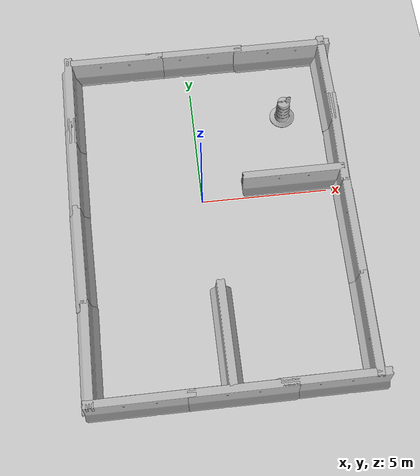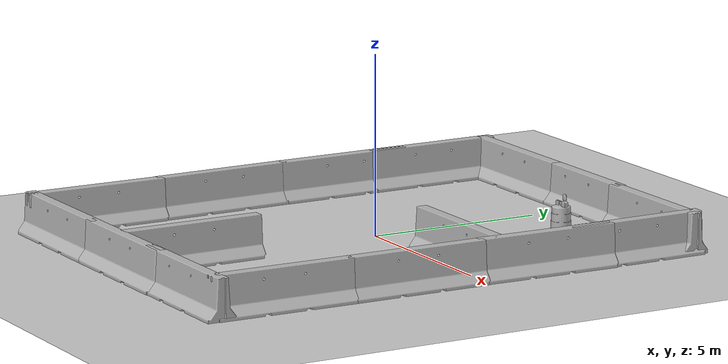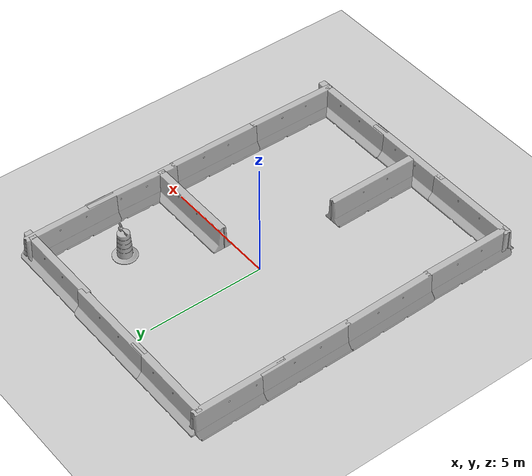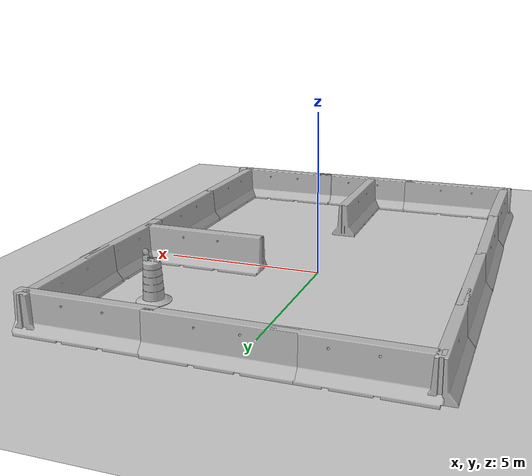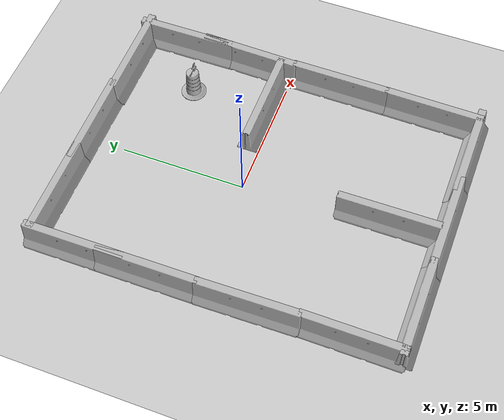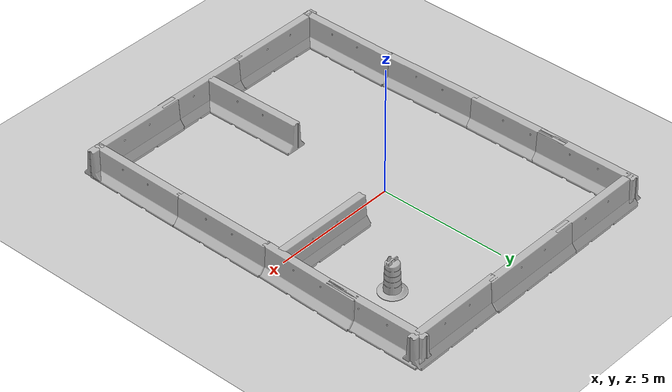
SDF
<sdf version="1.6">
 <world name="default">
  <light name="sun" type="directional">
   <pose>0 0 10 0 -0 0</pose>
   <diffuse>0.8 0.8 0.8 1</diffuse>
   <specular>0.1 0.1 0.1 1</specular>
   <attenuation>
    <range>1000</range>
    <constant>0.9</constant>
    <linear>0.01</linear>
    <quadratic>0.001</quadratic>
   </attenuation>
   <direction>-0.5 0.5 -1</direction>
  </light>
  <model name="ground_plane">
   <static>1</static>
   <link name="link">
    <collision name="collision">
     <geometry><plane><normal>0 0 1</normal><size>100 100</size></plane></geometry>
     <surface><friction><ode><mu>100</mu><mu2>50</mu2></ode></friction></surface>
    </collision>
    <visual name="visual">
     <cast_shadows>0</cast_shadows>
     <geometry><plane><normal>0 0 1</normal><size>100 100</size></plane></geometry>
     <material>
      <script><uri>file://media/materials/scripts/gazebo.material</uri><name>Gazebo/Grey</name></script>
     </material>
    </visual>
   </link>
  </model>
  <gravity>0 0 -9.8</gravity>
  <magnetic_field>6e-06 2.3e-05 -4.2e-05</magnetic_field>
  <atmosphere type="adiabatic"/>
  <physics name="default_physics" default="0" type="ode">
   <max_step_size>0.001</max_step_size>
   <real_time_factor>1</real_time_factor>
   <real_time_update_rate>1000</real_time_update_rate>
  </physics>
  <scene><ambient>0.4 0.4 0.4 1</ambient><background>0.7 0.7 0.7 1</background><shadows>1</shadows></scene>
  <spherical_coordinates>
   <surface_model>EARTH_WGS84</surface_model>
   <latitude_deg>0</latitude_deg>
   <longitude_deg>0</longitude_deg>
   <elevation>0</elevation>
   <heading_deg>0</heading_deg>
  </spherical_coordinates>
  <model name="jersey_barrier">
   <static>1</static>
   <link name="link">
    <visual name="visual">
     <geometry>
      <mesh><uri>model://jersey_barrier/meshes/jersey_barrier.dae</uri><scale>1 1 1</scale></mesh>
     </geometry>
    </visual>
    <collision name="upright">
     <pose>0 0 0.5715 0 -0 0</pose>
     <geometry><box><size>4.06542 0.3063 1.143</size></box></geometry>
    </collision>
    <collision name="base">
     <pose>0 0 0.032258 0 -0 0</pose>
     <geometry><box><size>4.06542 0.8107 0.064516</size></box></geometry>
    </collision>
    <collision name="base2">
     <pose>0 0 0.1 0 -0 0</pose>
     <geometry><box><size>4.06542 0.65 0.1</size></box></geometry>
    </collision>
    <collision name="base3">
     <pose>0 0 0.2 0 -0 0</pose>
     <geometry><box><size>4.06542 0.5 0.1</size></box></geometry>
    </collision>
    <collision name="left-angle">
     <pose>0 -0.224 0.2401 0.9 -0 0</pose>
     <geometry><box><size>4.06542 0.5 0.064516</size></box></geometry>
    </collision>
    <collision name="right-angle">
     <pose>0 0.224 0.2401 -0.9 0 0</pose>
     <geometry><box><size>4.06542 0.5 0.064516</size></box></geometry>
    </collision>
   </link>
   <pose>0.649461 -7.8387 0 0 -0 0</pose>
  </model>
  <model name="jersey_barrier_0">
   <static>1</static>
   <link name="link">
    <visual name="visual">
     <geometry>
      <mesh><uri>model://jersey_barrier/meshes/jersey_barrier.dae</uri><scale>1 1 1</scale></mesh>
     </geometry>
    </visual>
    <collision name="upright">
     <pose>0 0 0.5715 0 -0 0</pose>
     <geometry><box><size>4.06542 0.3063 1.143</size></box></geometry>
    </collision>
    <collision name="base">
     <pose>0 0 0.032258 0 -0 0</pose>
     <geometry><box><size>4.06542 0.8107 0.064516</size></box></geometry>
    </collision>
    <collision name="base2">
     <pose>0 0 0.1 0 -0 0</pose>
     <geometry><box><size>4.06542 0.65 0.1</size></box></geometry>
    </collision>
    <collision name="base3">
     <pose>0 0 0.2 0 -0 0</pose>
     <geometry><box><size>4.06542 0.5 0.1</size></box></geometry>
    </collision>
    <collision name="left-angle">
     <pose>0 -0.224 0.2401 0.9 -0 0</pose>
     <geometry><box><size>4.06542 0.5 0.064516</size></box></geometry>
    </collision>
    <collision name="right-angle">
     <pose>0 0.224 0.2401 -0.9 0 0</pose>
     <geometry><box><size>4.06542 0.5 0.064516</size></box></geometry>
    </collision>
   </link>
   <pose>-3.05336 -7.83742 0 0 -0 0</pose>
  </model>
  <model name="jersey_barrier_1">
   <static>1</static>
   <link name="link">
    <visual name="visual">
     <geometry>
      <mesh><uri>model://jersey_barrier/meshes/jersey_barrier.dae</uri><scale>1 1 1</scale></mesh>
     </geometry>
    </visual>
    <collision name="upright">
     <pose>0 0 0.5715 0 -0 0</pose>
     <geometry><box><size>4.06542 0.3063 1.143</size></box></geometry>
    </collision>
    <collision name="base">
     <pose>0 0 0.032258 0 -0 0</pose>
     <geometry><box><size>4.06542 0.8107 0.064516</size></box></geometry>
    </collision>
    <collision name="base2">
     <pose>0 0 0.1 0 -0 0</pose>
     <geometry><box><size>4.06542 0.65 0.1</size></box></geometry>
    </collision>
    <collision name="base3">
     <pose>0 0 0.2 0 -0 0</pose>
     <geometry><box><size>4.06542 0.5 0.1</size></box></geometry>
    </collision>
    <collision name="left-angle">
     <pose>0 -0.224 0.2401 0.9 -0 0</pose>
     <geometry><box><size>4.06542 0.5 0.064516</size></box></geometry>
    </collision>
    <collision name="right-angle">
     <pose>0 0.224 0.2401 -0.9 0 0</pose>
     <geometry><box><size>4.06542 0.5 0.064516</size></box></geometry>
    </collision>
   </link>
   <pose>3.99736 -7.8131 0 0 -0 0</pose>
  </model>
  <model name="jersey_barrier_2">
   <static>1</static>
   <link name="link">
    <visual name="visual">
     <geometry>
      <mesh><uri>model://jersey_barrier/meshes/jersey_barrier.dae</uri><scale>1 1 1</scale></mesh>
     </geometry>
    </visual>
    <collision name="upright">
     <pose>0 0 0.5715 0 -0 0</pose>
     <geometry><box><size>4.06542 0.3063 1.143</size></box></geometry>
    </collision>
    <collision name="base">
     <pose>0 0 0.032258 0 -0 0</pose>
     <geometry><box><size>4.06542 0.8107 0.064516</size></box></geometry>
    </collision>
    <collision name="base2">
     <pose>0 0 0.1 0 -0 0</pose>
     <geometry><box><size>4.06542 0.65 0.1</size></box></geometry>
    </collision>
    <collision name="base3">
     <pose>0 0 0.2 0 -0 0</pose>
     <geometry><box><size>4.06542 0.5 0.1</size></box></geometry>
    </collision>
    <collision name="left-angle">
     <pose>0 -0.224 0.2401 0.9 -0 0</pose>
     <geometry><box><size>4.06542 0.5 0.064516</size></box></geometry>
    </collision>
    <collision name="right-angle">
     <pose>0 0.224 0.2401 -0.9 0 0</pose>
     <geometry><box><size>4.06542 0.5 0.064516</size></box></geometry>
    </collision>
   </link>
   <pose>-3.00056 6.39688 0 0 -0 0</pose>
  </model>
  <model name="jersey_barrier_3">
   <static>1</static>
   <link name="link">
    <visual name="visual">
     <geometry>
      <mesh><uri>model://jersey_barrier/meshes/jersey_barrier.dae</uri><scale>1 1 1</scale></mesh>
     </geometry>
    </visual>
    <collision name="upright">
     <pose>0 0 0.5715 0 -0 0</pose>
     <geometry><box><size>4.06542 0.3063 1.143</size></box></geometry>
    </collision>
    <collision name="base">
     <pose>0 0 0.032258 0 -0 0</pose>
     <geometry><box><size>4.06542 0.8107 0.064516</size></box></geometry>
    </collision>
    <collision name="base2">
     <pose>0 0 0.1 0 -0 0</pose>
     <geometry><box><size>4.06542 0.65 0.1</size></box></geometry>
    </collision>
    <collision name="base3">
     <pose>0 0 0.2 0 -0 0</pose>
     <geometry><box><size>4.06542 0.5 0.1</size></box></geometry>
    </collision>
    <collision name="left-angle">
     <pose>0 -0.224 0.2401 0.9 -0 0</pose>
     <geometry><box><size>4.06542 0.5 0.064516</size></box></geometry>
    </collision>
    <collision name="right-angle">
     <pose>0 0.224 0.2401 -0.9 0 0</pose>
     <geometry><box><size>4.06542 0.5 0.064516</size></box></geometry>
    </collision>
   </link>
   <pose>0.313406 6.39715 0 0 -0 0</pose>
  </model>
  <model name="jersey_barrier_4">
   <static>1</static>
   <link name="link">
    <visual name="visual">
     <geometry>
      <mesh><uri>model://jersey_barrier/meshes/jersey_barrier.dae</uri><scale>1 1 1</scale></mesh>
     </geometry>
    </visual>
    <collision name="upright">
     <pose>0 0 0.5715 0 -0 0</pose>
     <geometry><box><size>4.06542 0.3063 1.143</size></box></geometry>
    </collision>
    <collision name="base">
     <pose>0 0 0.032258 0 -0 0</pose>
     <geometry><box><size>4.06542 0.8107 0.064516</size></box></geometry>
    </collision>
    <collision name="base2">
     <pose>0 0 0.1 0 -0 0</pose>
     <geometry><box><size>4.06542 0.65 0.1</size></box></geometry>
    </collision>
    <collision name="base3">
     <pose>0 0 0.2 0 -0 0</pose>
     <geometry><box><size>4.06542 0.5 0.1</size></box></geometry>
    </collision>
    <collision name="left-angle">
     <pose>0 -0.224 0.2401 0.9 -0 0</pose>
     <geometry><box><size>4.06542 0.5 0.064516</size></box></geometry>
    </collision>
    <collision name="right-angle">
     <pose>0 0.224 0.2401 -0.9 0 0</pose>
     <geometry><box><size>4.06542 0.5 0.064516</size></box></geometry>
    </collision>
   </link>
   <pose>4.01004 6.34122 0 0 -0 0</pose>
  </model>
  <model name="jersey_barrier_5">
   <static>1</static>
   <link name="link">
    <visual name="visual">
     <geometry>
      <mesh><uri>model://jersey_barrier/meshes/jersey_barrier.dae</uri><scale>1 1 1</scale></mesh>
     </geometry>
    </visual>
    <collision name="upright">
     <pose>0 0 0.5715 0 -0 0</pose>
     <geometry><box><size>4.06542 0.3063 1.143</size></box></geometry>
    </collision>
    <collision name="base">
     <pose>0 0 0.032258 0 -0 0</pose>
     <geometry><box><size>4.06542 0.8107 0.064516</size></box></geometry>
    </collision>
    <collision name="base2">
     <pose>0 0 0.1 0 -0 0</pose>
     <geometry><box><size>4.06542 0.65 0.1</size></box></geometry>
    </collision>
    <collision name="base3">
     <pose>0 0 0.2 0 -0 0</pose>
     <geometry><box><size>4.06542 0.5 0.1</size></box></geometry>
    </collision>
    <collision name="left-angle">
     <pose>0 -0.224 0.2401 0.9 -0 0</pose>
     <geometry><box><size>4.06542 0.5 0.064516</size></box></geometry>
    </collision>
    <collision name="right-angle">
     <pose>0 0.224 0.2401 -0.9 0 0</pose>
     <geometry><box><size>4.06542 0.5 0.064516</size></box></geometry>
    </collision>
   </link>
   <pose>5.61549 -5.9405 0 0 -0 1.55721</pose>
  </model>
  <model name="jersey_barrier_6">
   <static>1</static>
   <link name="link">
    <visual name="visual">
     <geometry>
      <mesh><uri>model://jersey_barrier/meshes/jersey_barrier.dae</uri><scale>1 1 1</scale></mesh>
     </geometry>
    </visual>
    <collision name="upright">
     <pose>0 0 0.5715 0 -0 0</pose>
     <geometry><box><size>4.06542 0.3063 1.143</size></box></geometry>
    </collision>
    <collision name="base">
     <pose>0 0 0.032258 0 -0 0</pose>
     <geometry><box><size>4.06542 0.8107 0.064516</size></box></geometry>
    </collision>
    <collision name="base2">
     <pose>0 0 0.1 0 -0 0</pose>
     <geometry><box><size>4.06542 0.65 0.1</size></box></geometry>
    </collision>
    <collision name="base3">
     <pose>0 0 0.2 0 -0 0</pose>
     <geometry><box><size>4.06542 0.5 0.1</size></box></geometry>
    </collision>
    <collision name="left-angle">
     <pose>0 -0.224 0.2401 0.9 -0 0</pose>
     <geometry><box><size>4.06542 0.5 0.064516</size></box></geometry>
    </collision>
    <collision name="right-angle">
     <pose>0 0.224 0.2401 -0.9 0 0</pose>
     <geometry><box><size>4.06542 0.5 0.064516</size></box></geometry>
    </collision>
   </link>
   <pose>5.65177 -2.0616 0 0 0 -1.57733</pose>
  </model>
  <model name="jersey_barrier_7">
   <static>1</static>
   <link name="link">
    <visual name="visual">
     <geometry>
      <mesh><uri>model://jersey_barrier/meshes/jersey_barrier.dae</uri><scale>1 1 1</scale></mesh>
     </geometry>
    </visual>
    <collision name="upright">
     <pose>0 0 0.5715 0 -0 0</pose>
     <geometry><box><size>4.06542 0.3063 1.143</size></box></geometry>
    </collision>
    <collision name="base">
     <pose>0 0 0.032258 0 -0 0</pose>
     <geometry><box><size>4.06542 0.8107 0.064516</size></box></geometry>
    </collision>
    <collision name="base2">
     <pose>0 0 0.1 0 -0 0</pose>
     <geometry><box><size>4.06542 0.65 0.1</size></box></geometry>
    </collision>
    <collision name="base3">
     <pose>0 0 0.2 0 -0 0</pose>
     <geometry><box><size>4.06542 0.5 0.1</size></box></geometry>
    </collision>
    <collision name="left-angle">
     <pose>0 -0.224 0.2401 0.9 -0 0</pose>
     <geometry><box><size>4.06542 0.5 0.064516</size></box></geometry>
    </collision>
    <collision name="right-angle">
     <pose>0 0.224 0.2401 -0.9 0 0</pose>
     <geometry><box><size>4.06542 0.5 0.064516</size></box></geometry>
    </collision>
   </link>
   <pose>5.68323 1.83548 0 0 0 -1.59689</pose>
  </model>
  <model name="jersey_barrier_8">
   <static>1</static>
   <link name="link">
    <visual name="visual">
     <geometry>
      <mesh><uri>model://jersey_barrier/meshes/jersey_barrier.dae</uri><scale>1 1 1</scale></mesh>
     </geometry>
    </visual>
    <collision name="upright">
     <pose>0 0 0.5715 0 -0 0</pose>
     <geometry><box><size>4.06542 0.3063 1.143</size></box></geometry>
    </collision>
    <collision name="base">
     <pose>0 0 0.032258 0 -0 0</pose>
     <geometry><box><size>4.06542 0.8107 0.064516</size></box></geometry>
    </collision>
    <collision name="base2">
     <pose>0 0 0.1 0 -0 0</pose>
     <geometry><box><size>4.06542 0.65 0.1</size></box></geometry>
    </collision>
    <collision name="base3">
     <pose>0 0 0.2 0 -0 0</pose>
     <geometry><box><size>4.06542 0.5 0.1</size></box></geometry>
    </collision>
    <collision name="left-angle">
     <pose>0 -0.224 0.2401 0.9 -0 0</pose>
     <geometry><box><size>4.06542 0.5 0.064516</size></box></geometry>
    </collision>
    <collision name="right-angle">
     <pose>0 0.224 0.2401 -0.9 0 0</pose>
     <geometry><box><size>4.06542 0.5 0.064516</size></box></geometry>
    </collision>
   </link>
   <pose>5.68645 4.61858 0 0 0 -1.56587</pose>
  </model>
  <model name="jersey_barrier_9">
   <static>1</static>
   <link name="link">
    <visual name="visual">
     <geometry>
      <mesh><uri>model://jersey_barrier/meshes/jersey_barrier.dae</uri><scale>1 1 1</scale></mesh>
     </geometry>
    </visual>
    <collision name="upright">
     <pose>0 0 0.5715 0 -0 0</pose>
     <geometry><box><size>4.06542 0.3063 1.143</size></box></geometry>
    </collision>
    <collision name="base">
     <pose>0 0 0.032258 0 -0 0</pose>
     <geometry><box><size>4.06542 0.8107 0.064516</size></box></geometry>
    </collision>
    <collision name="base2">
     <pose>0 0 0.1 0 -0 0</pose>
     <geometry><box><size>4.06542 0.65 0.1</size></box></geometry>
    </collision>
    <collision name="base3">
     <pose>0 0 0.2 0 -0 0</pose>
     <geometry><box><size>4.06542 0.5 0.1</size></box></geometry>
    </collision>
    <collision name="left-angle">
     <pose>0 -0.224 0.2401 0.9 -0 0</pose>
     <geometry><box><size>4.06542 0.5 0.064516</size></box></geometry>
    </collision>
    <collision name="right-angle">
     <pose>0 0.224 0.2401 -0.9 0 0</pose>
     <geometry><box><size>4.06542 0.5 0.064516</size></box></geometry>
    </collision>
   </link>
   <pose>-4.81678 -5.98067 0 0 0 -1.57506</pose>
  </model>
  <model name="jersey_barrier_10">
   <static>1</static>
   <link name="link">
    <visual name="visual">
     <geometry>
      <mesh><uri>model://jersey_barrier/meshes/jersey_barrier.dae</uri><scale>1 1 1</scale></mesh>
     </geometry>
    </visual>
    <collision name="upright">
     <pose>0 0 0.5715 0 -0 0</pose>
     <geometry><box><size>4.06542 0.3063 1.143</size></box></geometry>
    </collision>
    <collision name="base">
     <pose>0 0 0.032258 0 -0 0</pose>
     <geometry><box><size>4.06542 0.8107 0.064516</size></box></geometry>
    </collision>
    <collision name="base2">
     <pose>0 0 0.1 0 -0 0</pose>
     <geometry><box><size>4.06542 0.65 0.1</size></box></geometry>
    </collision>
    <collision name="base3">
     <pose>0 0 0.2 0 -0 0</pose>
     <geometry><box><size>4.06542 0.5 0.1</size></box></geometry>
    </collision>
    <collision name="left-angle">
     <pose>0 -0.224 0.2401 0.9 -0 0</pose>
     <geometry><box><size>4.06542 0.5 0.064516</size></box></geometry>
    </collision>
    <collision name="right-angle">
     <pose>0 0.224 0.2401 -0.9 0 0</pose>
     <geometry><box><size>4.06542 0.5 0.064516</size></box></geometry>
    </collision>
   </link>
   <pose>-4.87221 -2.09581 0 0 0 -1.55235</pose>
  </model>
  <model name="jersey_barrier_11">
   <static>1</static>
   <link name="link">
    <visual name="visual">
     <geometry>
      <mesh><uri>model://jersey_barrier/meshes/jersey_barrier.dae</uri><scale>1 1 1</scale></mesh>
     </geometry>
    </visual>
    <collision name="upright">
     <pose>0 0 0.5715 0 -0 0</pose>
     <geometry><box><size>4.06542 0.3063 1.143</size></box></geometry>
    </collision>
    <collision name="base">
     <pose>0 0 0.032258 0 -0 0</pose>
     <geometry><box><size>4.06542 0.8107 0.064516</size></box></geometry>
    </collision>
    <collision name="base2">
     <pose>0 0 0.1 0 -0 0</pose>
     <geometry><box><size>4.06542 0.65 0.1</size></box></geometry>
    </collision>
    <collision name="base3">
     <pose>0 0 0.2 0 -0 0</pose>
     <geometry><box><size>4.06542 0.5 0.1</size></box></geometry>
    </collision>
    <collision name="left-angle">
     <pose>0 -0.224 0.2401 0.9 -0 0</pose>
     <geometry><box><size>4.06542 0.5 0.064516</size></box></geometry>
    </collision>
    <collision name="right-angle">
     <pose>0 0.224 0.2401 -0.9 0 0</pose>
     <geometry><box><size>4.06542 0.5 0.064516</size></box></geometry>
    </collision>
   </link>
   <pose>-4.90577 1.77193 0 0 0 -1.56615</pose>
  </model>
  <model name="jersey_barrier_12">
   <static>1</static>
   <link name="link">
    <visual name="visual">
     <geometry>
      <mesh><uri>model://jersey_barrier/meshes/jersey_barrier.dae</uri><scale>1 1 1</scale></mesh>
     </geometry>
    </visual>
    <collision name="upright">
     <pose>0 0 0.5715 0 -0 0</pose>
     <geometry><box><size>4.06542 0.3063 1.143</size></box></geometry>
    </collision>
    <collision name="base">
     <pose>0 0 0.032258 0 -0 0</pose>
     <geometry><box><size>4.06542 0.8107 0.064516</size></box></geometry>
    </collision>
    <collision name="base2">
     <pose>0 0 0.1 0 -0 0</pose>
     <geometry><box><size>4.06542 0.65 0.1</size></box></geometry>
    </collision>
    <collision name="base3">
     <pose>0 0 0.2 0 -0 0</pose>
     <geometry><box><size>4.06542 0.5 0.1</size></box></geometry>
    </collision>
    <collision name="left-angle">
     <pose>0 -0.224 0.2401 0.9 -0 0</pose>
     <geometry><box><size>4.06542 0.5 0.064516</size></box></geometry>
    </collision>
    <collision name="right-angle">
     <pose>0 0.224 0.2401 -0.9 0 0</pose>
     <geometry><box><size>4.06542 0.5 0.064516</size></box></geometry>
    </collision>
   </link>
   <pose>-4.91764 4.64787 0 0 0 -1.56641</pose>
  </model>
  <model name="jersey_barrier_15">
   <static>1</static>
   <link name="link">
    <visual name="visual">
     <geometry>
      <mesh><uri>model://jersey_barrier/meshes/jersey_barrier.dae</uri><scale>1 1 1</scale></mesh>
     </geometry>
    </visual>
    <collision name="upright">
     <pose>0 0 0.5715 0 -0 0</pose>
     <geometry><box><size>4.06542 0.3063 1.143</size></box></geometry>
    </collision>
    <collision name="base">
     <pose>0 0 0.032258 0 -0 0</pose>
     <geometry><box><size>4.06542 0.8107 0.064516</size></box></geometry>
    </collision>
    <collision name="base2">
     <pose>0 0 0.1 0 -0 0</pose>
     <geometry><box><size>4.06542 0.65 0.1</size></box></geometry>
    </collision>
    <collision name="base3">
     <pose>0 0 0.2 0 -0 0</pose>
     <geometry><box><size>4.06542 0.5 0.1</size></box></geometry>
    </collision>
    <collision name="left-angle">
     <pose>0 -0.224 0.2401 0.9 -0 0</pose>
     <geometry><box><size>4.06542 0.5 0.064516</size></box></geometry>
    </collision>
    <collision name="right-angle">
     <pose>0 0.224 0.2401 -0.9 0 0</pose>
     <geometry><box><size>4.06542 0.5 0.064516</size></box></geometry>
    </collision>
   </link>
   <pose>0.306342 -5.73257 0 0 0 -1.56483</pose>
  </model>
  <model name="jersey_barrier_16">
   <static>1</static>
   <link name="link">
    <visual name="visual">
     <geometry>
      <mesh><uri>model://jersey_barrier/meshes/jersey_barrier.dae</uri><scale>1 1 1</scale></mesh>
     </geometry>
    </visual>
    <collision name="upright">
     <pose>0 0 0.5715 0 -0 0</pose>
     <geometry><box><size>4.06542 0.3063 1.143</size></box></geometry>
    </collision>
    <collision name="base">
     <pose>0 0 0.032258 0 -0 0</pose>
     <geometry><box><size>4.06542 0.8107 0.064516</size></box></geometry>
    </collision>
    <collision name="base2">
     <pose>0 0 0.1 0 -0 0</pose>
     <geometry><box><size>4.06542 0.65 0.1</size></box></geometry>
    </collision>
    <collision name="base3">
     <pose>0 0 0.2 0 -0 0</pose>
     <geometry><box><size>4.06542 0.5 0.1</size></box></geometry>
    </collision>
    <collision name="left-angle">
     <pose>0 -0.224 0.2401 0.9 -0 0</pose>
     <geometry><box><size>4.06542 0.5 0.064516</size></box></geometry>
    </collision>
    <collision name="right-angle">
     <pose>0 0.224 0.2401 -0.9 0 0</pose>
     <geometry><box><size>4.06542 0.5 0.064516</size></box></geometry>
    </collision>
   </link>
   <pose>3.6815 0.467482 0 0 -0 0</pose>
  </model>
  <model name="Construction Barrel">
   <static>1</static>
   <link name="link">
    <inertial>
     <pose>0 0 0.4 0 -0 0</pose>
     <mass>500</mass>
     <inertia><ixx>51.2096</ixx><iyy>51.2096</iyy><izz>25</izz><ixy>0</ixy><ixz>0</ixz><iyz>0</iyz></inertia>
    </inertial>
    <collision name="collision">
     <geometry>
      <mesh><uri>model://construction_barrel/meshes/construction_barrel.dae</uri><scale>1 1 1</scale></mesh>
     </geometry>
    </collision>
    <visual name="visual">
     <geometry>
      <mesh><uri>model://construction_barrel/meshes/construction_barrel.dae</uri><scale>1 1 1</scale></mesh>
     </geometry>
    </visual>
   </link>
   <pose>3.71239 3.56553 0 0 -0 0</pose>
  </model>
 </world>
</sdf>
